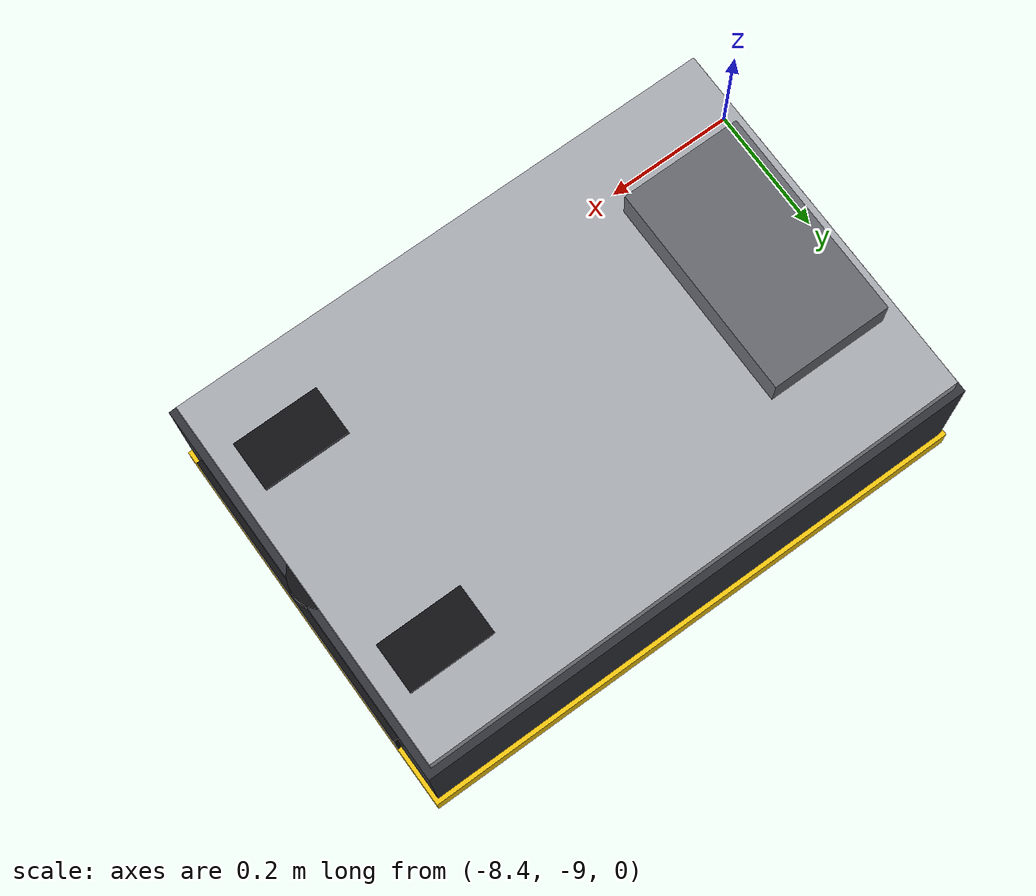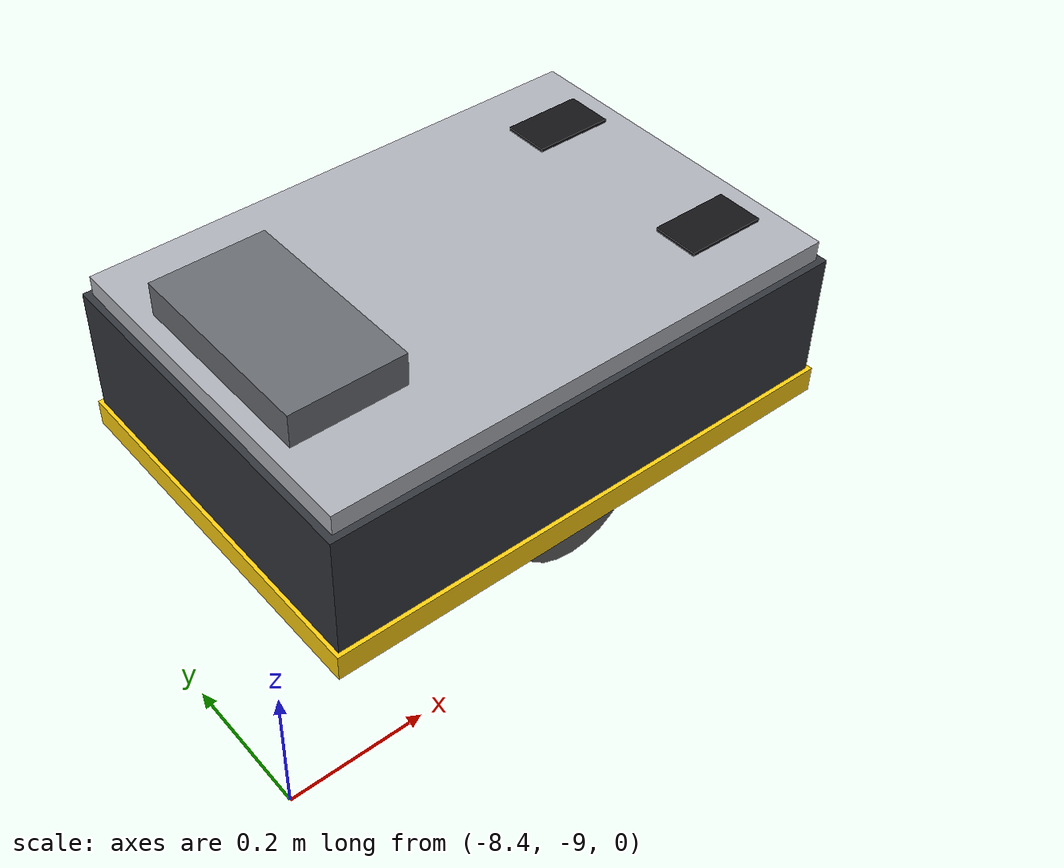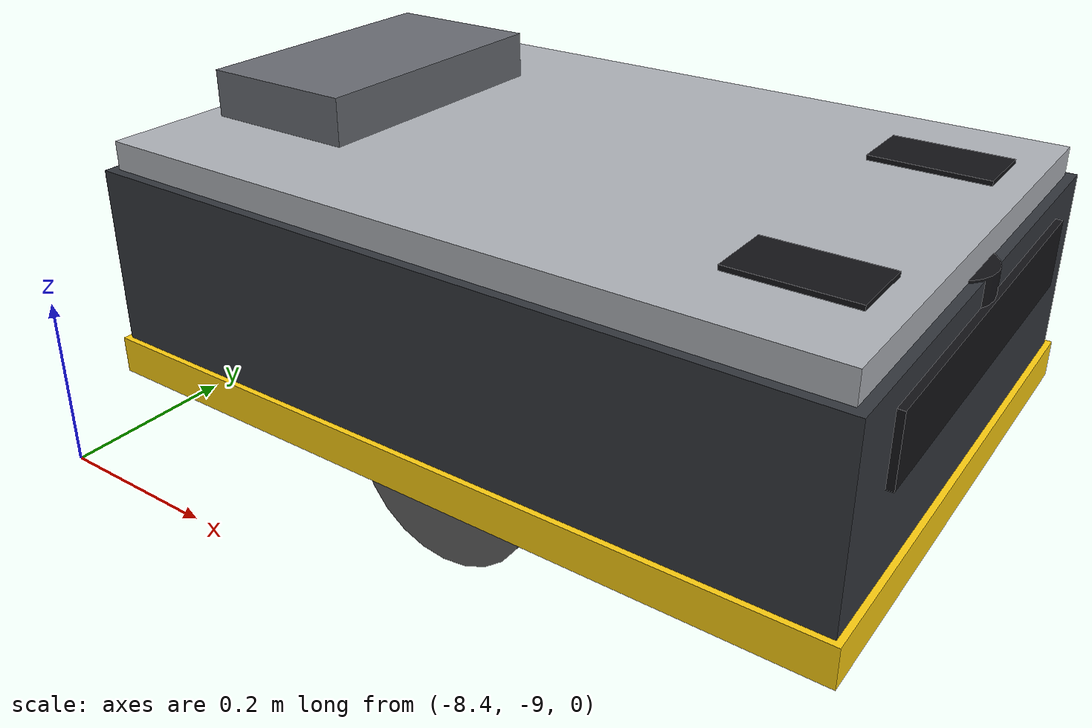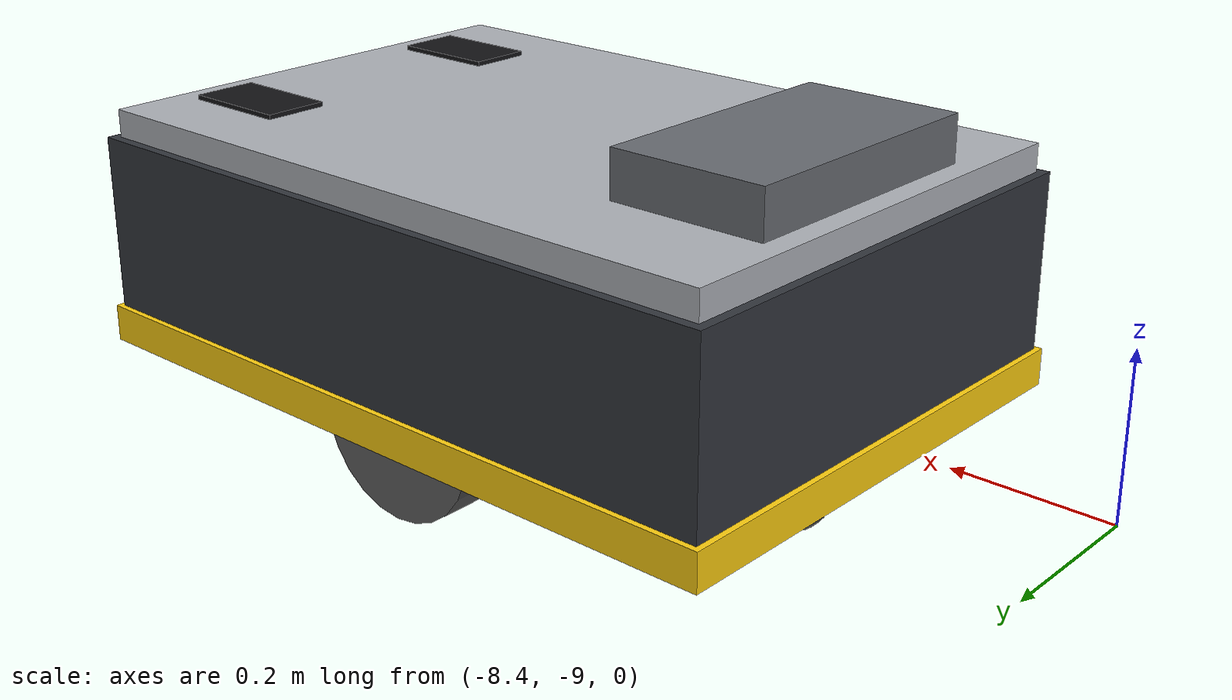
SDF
<sdf version="1.7"><world name="audit14_transport_0301abbe3fd64d4b8d902ee3bdadf5d4"><physics name="default_physics" type="ode"><max_step_size>0.001</max_step_size><real_time_factor>1.0</real_time_factor><real_time_update_rate>1000</real_time_update_rate></physics>
    <plugin name="gz::sim::systems::Physics" filename="gz-sim-physics-system" />
    <plugin name="gz::sim::systems::UserCommands" filename="gz-sim-user-commands-system" />
    <plugin name="gz::sim::systems::Contact" filename="gz-sim-contact-system" />
    <model name="ground_plane"><static>true</static><link name="link">
      <collision name="collision"><geometry><plane><normal>0 0 1</normal><size>24.5 20.5</size></plane></geometry></collision>
    </link></model>

    <model name="warehouse_shell"><static>true</static>
      <link name="wall_east"><pose>12.000 0.000 4.500 0 0 0.0000</pose><collision name="collision"><geometry><box><size>0.200 20.000 9.000</size></box></geometry></collision><sensor name="contact" type="contact"><contact><collision>collision</collision></contact><update_rate>60</update_rate></sensor></link>
      <link name="wall_west"><pose>-12.000 0.000 4.500 0 0 0.0000</pose><collision name="collision"><geometry><box><size>0.200 20.000 9.000</size></box></geometry></collision><sensor name="contact" type="contact"><contact><collision>collision</collision></contact><update_rate>60</update_rate></sensor></link>
      <link name="wall_north"><pose>0.000 10.000 4.500 0 0 0.0000</pose><collision name="collision"><geometry><box><size>24.000 0.200 9.000</size></box></geometry></collision><sensor name="contact" type="contact"><contact><collision>collision</collision></contact><update_rate>60</update_rate></sensor></link>
      <link name="wall_south_0"><pose>-11.050 -10.000 4.500 0 0 0.0000</pose><collision name="collision"><geometry><box><size>1.900 0.200 9.000</size></box></geometry></collision><sensor name="contact" type="contact"><contact><collision>collision</collision></contact><update_rate>60</update_rate></sensor></link>
      <link name="wall_south_1"><pose>-5.000 -10.000 4.500 0 0 0.0000</pose><collision name="collision"><geometry><box><size>3.800 0.200 9.000</size></box></geometry></collision><sensor name="contact" type="contact"><contact><collision>collision</collision></contact><update_rate>60</update_rate></sensor></link>
      <link name="wall_south_2"><pose>2.000 -10.000 4.500 0 0 0.0000</pose><collision name="collision"><geometry><box><size>3.800 0.200 9.000</size></box></geometry></collision><sensor name="contact" type="contact"><contact><collision>collision</collision></contact><update_rate>60</update_rate></sensor></link>
      <link name="wall_south_3"><pose>9.550 -10.000 4.500 0 0 0.0000</pose><collision name="collision"><geometry><box><size>4.900 0.200 9.000</size></box></geometry></collision><sensor name="contact" type="contact"><contact><collision>collision</collision></contact><update_rate>60</update_rate></sensor></link>
      <link name="door_head_0"><pose>-8.500 -10.000 6.750 0 0 0.0000</pose><collision name="collision"><geometry><box><size>3.200 0.200 4.500</size></box></geometry></collision><sensor name="contact" type="contact"><contact><collision>collision</collision></contact><update_rate>60</update_rate></sensor></link>
      <link name="door_head_1"><pose>-1.500 -10.000 6.750 0 0 0.0000</pose><collision name="collision"><geometry><box><size>3.200 0.200 4.500</size></box></geometry></collision><sensor name="contact" type="contact"><contact><collision>collision</collision></contact><update_rate>60</update_rate></sensor></link>
      <link name="door_head_2"><pose>5.500 -10.000 6.750 0 0 0.0000</pose><collision name="collision"><geometry><box><size>3.200 0.200 4.500</size></box></geometry></collision><sensor name="contact" type="contact"><contact><collision>collision</collision></contact><update_rate>60</update_rate></sensor></link>
      </model>

    <model name="warehouse_v2_occluders"><static>true</static>
      <link name="obs_A1b1w"><pose>-9.410 -2.442 2.613 0 0 0.0000</pose><collision name="collision"><geometry><box><size>0.880 3.917 5.226</size></box></geometry></collision><sensor name="contact" type="contact"><contact><collision>collision</collision></contact><update_rate>60</update_rate></sensor></link>
      <link name="obs_A1b1e"><pose>-8.390 -2.442 2.613 0 0 0.0000</pose><collision name="collision"><geometry><box><size>0.880 3.917 5.226</size></box></geometry></collision><sensor name="contact" type="contact"><contact><collision>collision</collision></contact><update_rate>60</update_rate></sensor></link>
      <link name="obs_A1b2w"><pose>-9.410 1.475 2.613 0 0 0.0000</pose><collision name="collision"><geometry><box><size>0.880 3.917 5.226</size></box></geometry></collision><sensor name="contact" type="contact"><contact><collision>collision</collision></contact><update_rate>60</update_rate></sensor></link>
      <link name="obs_A1b2e"><pose>-8.390 1.475 2.613 0 0 0.0000</pose><collision name="collision"><geometry><box><size>0.880 3.917 5.226</size></box></geometry></collision><sensor name="contact" type="contact"><contact><collision>collision</collision></contact><update_rate>60</update_rate></sensor></link>
      <link name="obs_A1b3w"><pose>-9.410 5.393 2.613 0 0 0.0000</pose><collision name="collision"><geometry><box><size>0.880 3.917 5.226</size></box></geometry></collision><sensor name="contact" type="contact"><contact><collision>collision</collision></contact><update_rate>60</update_rate></sensor></link>
      <link name="obs_A1b3e"><pose>-8.390 5.393 2.613 0 0 0.0000</pose><collision name="collision"><geometry><box><size>0.880 3.917 5.226</size></box></geometry></collision><sensor name="contact" type="contact"><contact><collision>collision</collision></contact><update_rate>60</update_rate></sensor></link>
      <link name="obs_A2b1w"><pose>-5.510 -2.442 2.613 0 0 0.0000</pose><collision name="collision"><geometry><box><size>0.880 3.917 5.226</size></box></geometry></collision><sensor name="contact" type="contact"><contact><collision>collision</collision></contact><update_rate>60</update_rate></sensor></link>
      <link name="obs_A2b1e"><pose>-4.490 -2.442 2.613 0 0 0.0000</pose><collision name="collision"><geometry><box><size>0.880 3.917 5.226</size></box></geometry></collision><sensor name="contact" type="contact"><contact><collision>collision</collision></contact><update_rate>60</update_rate></sensor></link>
      <link name="obs_A2b2w"><pose>-5.510 1.475 1.306 0 0 0.0000</pose><collision name="collision"><geometry><box><size>0.880 3.917 2.613</size></box></geometry></collision><sensor name="contact" type="contact"><contact><collision>collision</collision></contact><update_rate>60</update_rate></sensor></link>
      <link name="obs_A2b2e"><pose>-4.490 1.475 1.306 0 0 0.0000</pose><collision name="collision"><geometry><box><size>0.880 3.917 2.613</size></box></geometry></collision><sensor name="contact" type="contact"><contact><collision>collision</collision></contact><update_rate>60</update_rate></sensor></link>
      <link name="obs_A2b3w"><pose>-5.510 5.393 2.613 0 0 0.0000</pose><collision name="collision"><geometry><box><size>0.880 3.917 5.226</size></box></geometry></collision><sensor name="contact" type="contact"><contact><collision>collision</collision></contact><update_rate>60</update_rate></sensor></link>
      <link name="obs_A2b3e"><pose>-4.490 5.393 2.613 0 0 0.0000</pose><collision name="collision"><geometry><box><size>0.880 3.917 5.226</size></box></geometry></collision><sensor name="contact" type="contact"><contact><collision>collision</collision></contact><update_rate>60</update_rate></sensor></link>
      <link name="obs_A3b1w"><pose>-1.610 -2.442 2.613 0 0 0.0000</pose><collision name="collision"><geometry><box><size>0.880 3.917 5.226</size></box></geometry></collision><sensor name="contact" type="contact"><contact><collision>collision</collision></contact><update_rate>60</update_rate></sensor></link>
      <link name="obs_A3b1e"><pose>-0.590 -2.442 2.613 0 0 0.0000</pose><collision name="collision"><geometry><box><size>0.880 3.917 5.226</size></box></geometry></collision><sensor name="contact" type="contact"><contact><collision>collision</collision></contact><update_rate>60</update_rate></sensor></link>
      <link name="obs_A3b2w"><pose>-1.610 1.475 2.613 0 0 0.0000</pose><collision name="collision"><geometry><box><size>0.880 3.917 5.226</size></box></geometry></collision><sensor name="contact" type="contact"><contact><collision>collision</collision></contact><update_rate>60</update_rate></sensor></link>
      <link name="obs_A3b2e"><pose>-0.590 1.475 2.613 0 0 0.0000</pose><collision name="collision"><geometry><box><size>0.880 3.917 5.226</size></box></geometry></collision><sensor name="contact" type="contact"><contact><collision>collision</collision></contact><update_rate>60</update_rate></sensor></link>
      <link name="obs_A3b3w"><pose>-1.610 5.393 1.306 0 0 0.0000</pose><collision name="collision"><geometry><box><size>0.880 3.917 2.613</size></box></geometry></collision><sensor name="contact" type="contact"><contact><collision>collision</collision></contact><update_rate>60</update_rate></sensor></link>
      <link name="obs_A3b3e"><pose>-0.590 5.393 1.306 0 0 0.0000</pose><collision name="collision"><geometry><box><size>0.880 3.917 2.613</size></box></geometry></collision><sensor name="contact" type="contact"><contact><collision>collision</collision></contact><update_rate>60</update_rate></sensor></link>
      <link name="obs_B1b1s"><pose>3.758 7.840 1.306 0 0 0.0000</pose><collision name="collision"><geometry><box><size>3.917 0.880 2.613</size></box></geometry></collision><sensor name="contact" type="contact"><contact><collision>collision</collision></contact><update_rate>60</update_rate></sensor></link>
      <link name="obs_B1b1n"><pose>3.758 8.860 1.306 0 0 0.0000</pose><collision name="collision"><geometry><box><size>3.917 0.880 2.613</size></box></geometry></collision><sensor name="contact" type="contact"><contact><collision>collision</collision></contact><update_rate>60</update_rate></sensor></link>
      <link name="obs_B1b2s"><pose>7.675 7.840 1.306 0 0 0.0000</pose><collision name="collision"><geometry><box><size>3.917 0.880 2.613</size></box></geometry></collision><sensor name="contact" type="contact"><contact><collision>collision</collision></contact><update_rate>60</update_rate></sensor></link>
      <link name="obs_B1b2n"><pose>7.675 8.860 1.306 0 0 0.0000</pose><collision name="collision"><geometry><box><size>3.917 0.880 2.613</size></box></geometry></collision><sensor name="contact" type="contact"><contact><collision>collision</collision></contact><update_rate>60</update_rate></sensor></link>
      <link name="obs_Cs_p0"><pose>3.182 -3.340 0.529 0 0 0.0000</pose><collision name="collision"><geometry><box><size>2.146 1.983 1.058</size></box></geometry></collision><sensor name="contact" type="contact"><contact><collision>collision</collision></contact><update_rate>60</update_rate></sensor></link>
      <link name="obs_Cs_p1"><pose>5.825 -3.340 1.058 0 0 0.0000</pose><collision name="collision"><geometry><box><size>2.146 1.983 2.115</size></box></geometry></collision><sensor name="contact" type="contact"><contact><collision>collision</collision></contact><update_rate>60</update_rate></sensor></link>
      <link name="obs_Cs_p2"><pose>8.468 -3.340 1.587 0 0 0.0000</pose><collision name="collision"><geometry><box><size>2.146 1.983 3.173</size></box></geometry></collision><sensor name="contact" type="contact"><contact><collision>collision</collision></contact><update_rate>60</update_rate></sensor></link>
      <link name="obs_Cm_p0"><pose>3.182 0.580 1.320 0 0 0.0000</pose><collision name="collision"><geometry><box><size>1.200 1.200 2.640</size></box></geometry></collision><sensor name="contact" type="contact"><contact><collision>collision</collision></contact><update_rate>60</update_rate></sensor></link>
      <link name="obs_Cm_p1"><pose>5.825 0.580 0.440 0 0 0.0000</pose><collision name="collision"><geometry><box><size>1.200 1.200 0.880</size></box></geometry></collision><sensor name="contact" type="contact"><contact><collision>collision</collision></contact><update_rate>60</update_rate></sensor></link>
      <link name="obs_Cm_p2"><pose>8.468 0.580 0.880 0 0 0.0000</pose><collision name="collision"><geometry><box><size>1.200 1.200 1.760</size></box></geometry></collision><sensor name="contact" type="contact"><contact><collision>collision</collision></contact><update_rate>60</update_rate></sensor></link>
      <link name="obs_Cn_p0"><pose>3.182 4.500 0.980 0 0 0.0000</pose><collision name="collision"><geometry><box><size>2.160 1.650 1.960</size></box></geometry></collision><sensor name="contact" type="contact"><contact><collision>collision</collision></contact><update_rate>60</update_rate></sensor></link>
      <link name="obs_Cn_p1"><pose>5.825 4.500 0.490 0 0 0.0000</pose><collision name="collision"><geometry><box><size>2.160 1.650 0.980</size></box></geometry></collision><sensor name="contact" type="contact"><contact><collision>collision</collision></contact><update_rate>60</update_rate></sensor></link>
      <link name="obs_Cn_p2"><pose>8.468 4.500 0.735 0 0 0.0000</pose><collision name="collision"><geometry><box><size>2.160 1.650 1.470</size></box></geometry></collision><sensor name="contact" type="contact"><contact><collision>collision</collision></contact><update_rate>60</update_rate></sensor></link>
      <link name="dock_office"><pose>-10.100 -8.450 1.400 0 0 0.0000</pose><collision name="collision"><geometry><box><size>2.440 1.740 2.800</size></box></geometry></collision><sensor name="contact" type="contact"><contact><collision>collision</collision></contact><update_rate>60</update_rate></sensor></link>
      <link name="obs_STAGE_MID0"><pose>-3.900 -8.750 0.860 0 0 0.0000</pose><collision name="collision"><geometry><box><size>0.950 1.000 1.720</size></box></geometry></collision><sensor name="contact" type="contact"><contact><collision>collision</collision></contact><update_rate>60</update_rate></sensor></link>
      <link name="obs_STAGE_MID1"><pose>-2.850 -8.750 0.860 0 0 0.0000</pose><collision name="collision"><geometry><box><size>0.950 1.000 1.720</size></box></geometry></collision><sensor name="contact" type="contact"><contact><collision>collision</collision></contact><update_rate>60</update_rate></sensor></link>
      <link name="obs_STAGE_E0"><pose>3.300 -8.750 0.530 0 0 0.0000</pose><collision name="collision"><geometry><box><size>0.950 1.000 1.060</size></box></geometry></collision><sensor name="contact" type="contact"><contact><collision>collision</collision></contact><update_rate>60</update_rate></sensor></link>
      <link name="obs_STAGE_E1"><pose>4.350 -8.750 0.530 0 0 0.0000</pose><collision name="collision"><geometry><box><size>0.950 1.000 1.060</size></box></geometry></collision><sensor name="contact" type="contact"><contact><collision>collision</collision></contact><update_rate>60</update_rate></sensor></link>
    </model>

    <model name="turtlebot3">
    <link name="base_footprint">
      <inertial>
        <pose>0.0006876152832674575 -4.463941751010806e-22 0.1887348814229249 0 0 0</pose>
        <mass>60.719999999999978</mass>
        <inertia>
          <ixx>1.866830208121147</ixx>
          <ixy>-1.863784959882032e-23</ixy>
          <ixz>-0.0046394612308300401</ixz>
          <iyy>3.6234429628078368</iyy>
          <iyz>-4.8446186684418529e-21</iyz>
          <izz>4.7830873546866934</izz>
        </inertia>
      </inertial>
      <collision name="base_footprint_fixed_joint_lump__base_link_collision">
        <pose>0 0 0.205 0 0 0</pose>
        <geometry>
          <box>
            <size>0.8 0.55 0.27</size>
          </box>
        </geometry>
      </collision>
      <collision name="base_footprint_fixed_joint_lump__caster_front_link_collision_1">
        <pose>0.3 0 0.04 0 0 0</pose>
        <geometry>
          <sphere>
            <radius>0.040000000000000001</radius>
          </sphere>
        </geometry>
      </collision>
      <collision name="base_footprint_fixed_joint_lump__caster_rear_link_collision_2">
        <pose>-0.3 0 0.04 0 0 0</pose>
        <geometry>
          <sphere>
            <radius>0.040000000000000001</radius>
          </sphere>
        </geometry>
      </collision>
      <visual name="base_footprint_fixed_joint_lump__base_link_visual">
        <pose>0 0 0.205 0 0 0</pose>
        <geometry>
          <box>
            <size>0.8 0.55 0.23</size>
          </box>
        </geometry>
        <material>
          <diffuse>0.2 0.2125 0.2375 1</diffuse>
          <ambient>0.2 0.2125 0.2375 1</ambient>
        </material>
      </visual>
      <visual name="base_footprint_fixed_joint_lump__bumper_link_visual_1">
        <pose>0 0 0.11 0 0 0</pose>
        <geometry>
          <box>
            <size>0.812 0.562 0.04</size>
          </box>
        </geometry>
        <material>
          <diffuse>1 0.8125 0.0625 1</diffuse>
          <ambient>1 0.8125 0.0625 1</ambient>
        </material>
      </visual>
      <visual name="base_footprint_fixed_joint_lump__cabinet_link_visual_2">
        <pose>-0.28 0 0.375 0 0 0</pose>
        <geometry>
          <box>
            <size>0.17 0.3 0.05</size>
          </box>
        </geometry>
        <material>
          <diffuse>0.4125 0.425 0.45 1</diffuse>
          <ambient>0.4125 0.425 0.45 1</ambient>
        </material>
      </visual>
      <visual name="base_footprint_fixed_joint_lump__caster_front_link_visual_3">
        <pose>0.3 0 0.04 0 0 0</pose>
        <geometry>
          <sphere>
            <radius>0.040000000000000001</radius>
          </sphere>
        </geometry>
        <material>
          <diffuse>0.375 0.375 0.375 1</diffuse>
          <ambient>0.375 0.375 0.375 1</ambient>
        </material>
      </visual>
      <visual name="base_footprint_fixed_joint_lump__caster_rear_link_visual_4">
        <pose>-0.3 0 0.04 0 0 0</pose>
        <geometry>
          <sphere>
            <radius>0.040000000000000001</radius>
          </sphere>
        </geometry>
        <material>
          <diffuse>0.375 0.375 0.375 1</diffuse>
          <ambient>0.375 0.375 0.375 1</ambient>
        </material>
      </visual>
      <visual name="base_footprint_fixed_joint_lump__deck_link_visual_5">
        <pose>0 0 0.335 0 0 0</pose>
        <geometry>
          <box>
            <size>0.78 0.53 0.03</size>
          </box>
        </geometry>
        <material>
          <diffuse>0.6875 0.7 0.725 1</diffuse>
          <ambient>0.6875 0.7 0.725 1</ambient>
        </material>
      </visual>
      <visual name="base_footprint_fixed_joint_lump__deck_slot_left_link_visual_6">
        <pose>0.3 0.15 0.351 0 0 0</pose>
        <geometry>
          <box>
            <size>0.12 0.07 0.008</size>
          </box>
        </geometry>
        <material>
          <diffuse>0.075 0.075 0.0875 1</diffuse>
          <ambient>0.075 0.075 0.0875 1</ambient>
        </material>
      </visual>
      <visual name="base_footprint_fixed_joint_lump__deck_slot_right_link_visual_7">
        <pose>0.3 -0.15 0.351 0 0 0</pose>
        <geometry>
          <box>
            <size>0.12 0.07 0.008</size>
          </box>
        </geometry>
        <material>
          <diffuse>0.075 0.075 0.0875 1</diffuse>
          <ambient>0.075 0.075 0.0875 1</ambient>
        </material>
      </visual>
      <visual name="base_footprint_fixed_joint_lump__base_scan_visual_8">
        <pose>0.36 0 0.3 0 0 0</pose>
        <geometry>
          <cylinder>
            <length>0.044999999999999998</length>
            <radius>0.044999999999999998</radius>
          </cylinder>
        </geometry>
        <material>
          <diffuse>0.075 0.075 0.0875 1</diffuse>
          <ambient>0.075 0.075 0.0875 1</ambient>
        </material>
      </visual>
      <visual name="base_footprint_fixed_joint_lump__sensor_bar_link_visual_9">
        <pose>0.392 0 0.26 0 0 0</pose>
        <geometry>
          <box>
            <size>0.03 0.42 0.07</size>
          </box>
        </geometry>
        <material>
          <diffuse>0.075 0.075 0.0875 1</diffuse>
          <ambient>0.075 0.075 0.0875 1</ambient>
        </material>
      </visual>
    </link>
    <joint name="wheel_left_joint" type="revolute">
      <pose relative_to="base_footprint">0 0.22 0.1 -1.5708 0 0</pose>
      <parent>base_footprint</parent>
      <child>wheel_left_link</child>
      <axis>
        <xyz>0 0 1</xyz>
        <limit>
          <lower>-10000000000000000</lower>
          <upper>10000000000000000</upper>
        </limit>
        <dynamics>
          <spring_reference>0</spring_reference>
          <spring_stiffness>0</spring_stiffness>
        </dynamics>
      </axis>
    </joint>
    <link name="wheel_left_link">
      <pose relative_to="wheel_left_joint">0 0 0 0 0 0</pose>
      <inertial>
        <pose>0 0 0 0 0 0</pose>
        <mass>2</mass>
        <inertia>
          <ixx>0.0054166700000000002</ixx>
          <ixy>0</ixy>
          <ixz>0</ixz>
          <iyy>0.0054166700000000002</iyy>
          <iyz>0</iyz>
          <izz>0.01</izz>
        </inertia>
      </inertial>
      <collision name="wheel_left_link_collision">
        <pose>0 0 0 0 0 0</pose>
        <geometry>
          <cylinder>
            <length>0.050000000000000003</length>
            <radius>0.10000000000000001</radius>
          </cylinder>
        </geometry>
      </collision>
      <visual name="wheel_left_link_visual">
        <pose>0 0 0 0 0 0</pose>
        <geometry>
          <cylinder>
            <length>0.050000000000000003</length>
            <radius>0.10000000000000001</radius>
          </cylinder>
        </geometry>
        <material>
          <diffuse>0.375 0.375 0.375 1</diffuse>
          <ambient>0.375 0.375 0.375 1</ambient>
        </material>
      </visual>
    </link>
    <joint name="wheel_right_joint" type="revolute">
      <pose relative_to="base_footprint">0 -0.22 0.1 -1.5708 0 0</pose>
      <parent>base_footprint</parent>
      <child>wheel_right_link</child>
      <axis>
        <xyz>0 0 1</xyz>
        <limit>
          <lower>-10000000000000000</lower>
          <upper>10000000000000000</upper>
        </limit>
        <dynamics>
          <spring_reference>0</spring_reference>
          <spring_stiffness>0</spring_stiffness>
        </dynamics>
      </axis>
    </joint>
    <link name="wheel_right_link">
      <pose relative_to="wheel_right_joint">0 0 0 0 0 0</pose>
      <inertial>
        <pose>0 0 0 0 0 0</pose>
        <mass>2</mass>
        <inertia>
          <ixx>0.0054166700000000002</ixx>
          <ixy>0</ixy>
          <ixz>0</ixz>
          <iyy>0.0054166700000000002</iyy>
          <iyz>0</iyz>
          <izz>0.01</izz>
        </inertia>
      </inertial>
      <collision name="wheel_right_link_collision">
        <pose>0 0 0 0 0 0</pose>
        <geometry>
          <cylinder>
            <length>0.050000000000000003</length>
            <radius>0.10000000000000001</radius>
          </cylinder>
        </geometry>
      </collision>
      <visual name="wheel_right_link_visual">
        <pose>0 0 0 0 0 0</pose>
        <geometry>
          <cylinder>
            <length>0.050000000000000003</length>
            <radius>0.10000000000000001</radius>
          </cylinder>
        </geometry>
        <material>
          <diffuse>0.375 0.375 0.375 1</diffuse>
          <ambient>0.375 0.375 0.375 1</ambient>
        </material>
      </visual>
    </link>
    <plugin name="ignition::gazebo::systems::Label" filename="gz-sim-label-system">
      <label>23</label>
    </plugin>
    <plugin name="gz::sim::systems::DiffDrive" filename="gz-sim-diff-drive-system">
      <left_joint>wheel_left_joint</left_joint>
      <right_joint>wheel_right_joint</right_joint>
      <wheel_separation>0.44</wheel_separation>
      <wheel_radius>0.1</wheel_radius>
      <topic>/model/turtlebot3/cmd_vel</topic>
      <odom_topic>/model/turtlebot3/odometry</odom_topic>
      <frame_id>odom</frame_id>
      <child_frame_id>base_link</child_frame_id>
      <odom_publish_frequency>50</odom_publish_frequency>
      <publish_tf>true</publish_tf>
    </plugin>
    <frame name="bumper_joint" attached_to="base_link">
      <pose>0 0 0.1 0 -0 0</pose>
    </frame>
    <frame name="bumper_link" attached_to="bumper_joint" />
    <frame name="cabinet_joint" attached_to="base_link">
      <pose>-0.28 0 0.365 0 -0 0</pose>
    </frame>
    <frame name="cabinet_link" attached_to="cabinet_joint" />
    <frame name="caster_front_joint" attached_to="base_link">
      <pose>0.3 0 0.03 0 -0 0</pose>
    </frame>
    <frame name="caster_front_link" attached_to="caster_front_joint" />
    <frame name="caster_rear_joint" attached_to="base_link">
      <pose>-0.3 0 0.03 0 -0 0</pose>
    </frame>
    <frame name="caster_rear_link" attached_to="caster_rear_joint" />
    <frame name="deck_joint" attached_to="base_link">
      <pose>0 0 0.325 0 -0 0</pose>
    </frame>
    <frame name="deck_link" attached_to="deck_joint" />
    <frame name="deck_slot_left_joint" attached_to="base_link">
      <pose>0.3 0.15 0.341 0 -0 0</pose>
    </frame>
    <frame name="deck_slot_left_link" attached_to="deck_slot_left_joint" />
    <frame name="deck_slot_right_joint" attached_to="base_link">
      <pose>0.3 -0.15 0.341 0 -0 0</pose>
    </frame>
    <frame name="deck_slot_right_link" attached_to="deck_slot_right_joint" />
    <frame name="imu_joint" attached_to="base_link">
      <pose>0 0 0.2 0 -0 0</pose>
    </frame>
    <frame name="imu_link" attached_to="imu_joint" />
    <frame name="scan_joint" attached_to="base_link">
      <pose>0.36 0 0.29 0 -0 0</pose>
    </frame>
    <frame name="base_scan" attached_to="scan_joint" />
    <frame name="sensor_bar_joint" attached_to="base_link">
      <pose>0.392 0 0.25 0 -0 0</pose>
    </frame>
    <frame name="sensor_bar_link" attached_to="sensor_bar_joint" />
    <frame name="base_joint" attached_to="base_footprint">
      <pose>0 0 0.01 0 -0 0</pose>
    </frame>
    <frame name="base_link" attached_to="base_joint" />
  <pose>-7.9 -8.7 0.05 0 0 0</pose></model>
<plugin name="gz::sim::systems::SceneBroadcaster" filename="gz-sim-scene-broadcaster-system" />
    </world></sdf>
